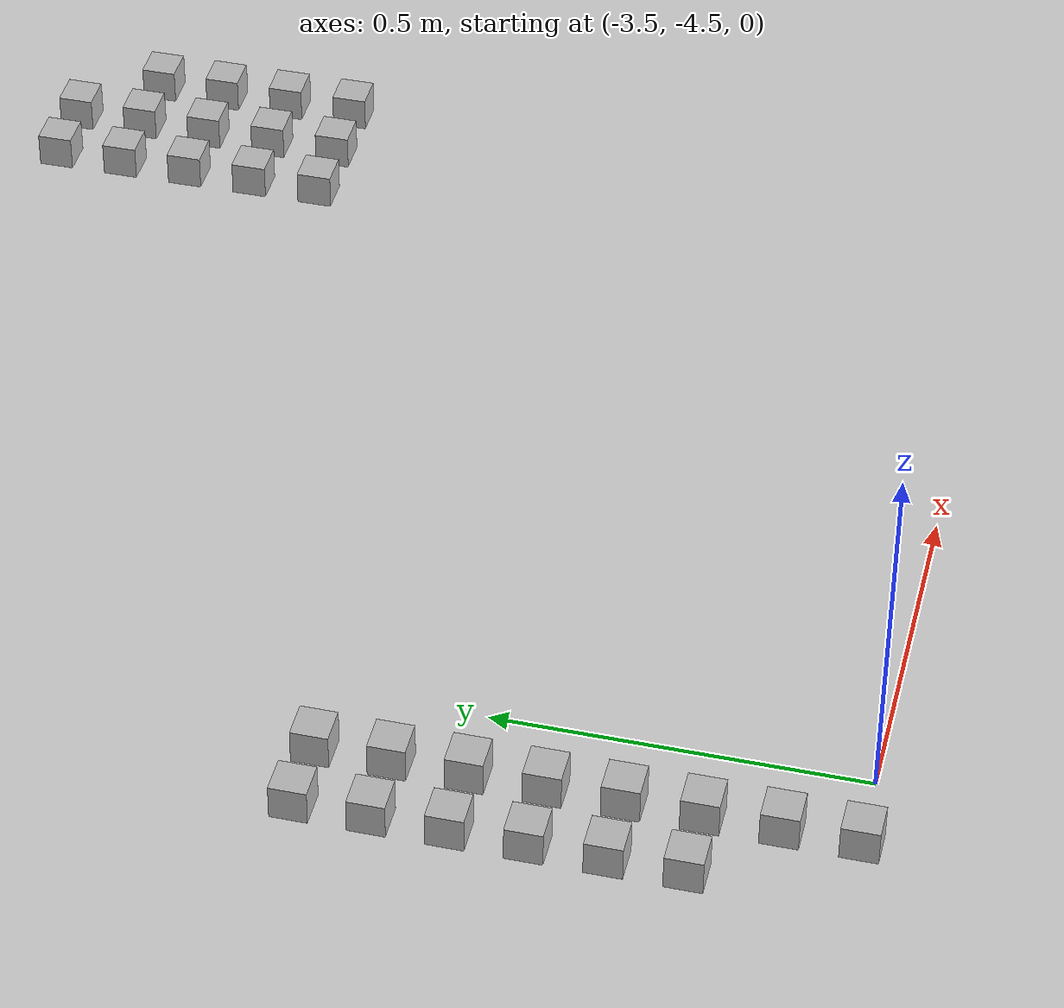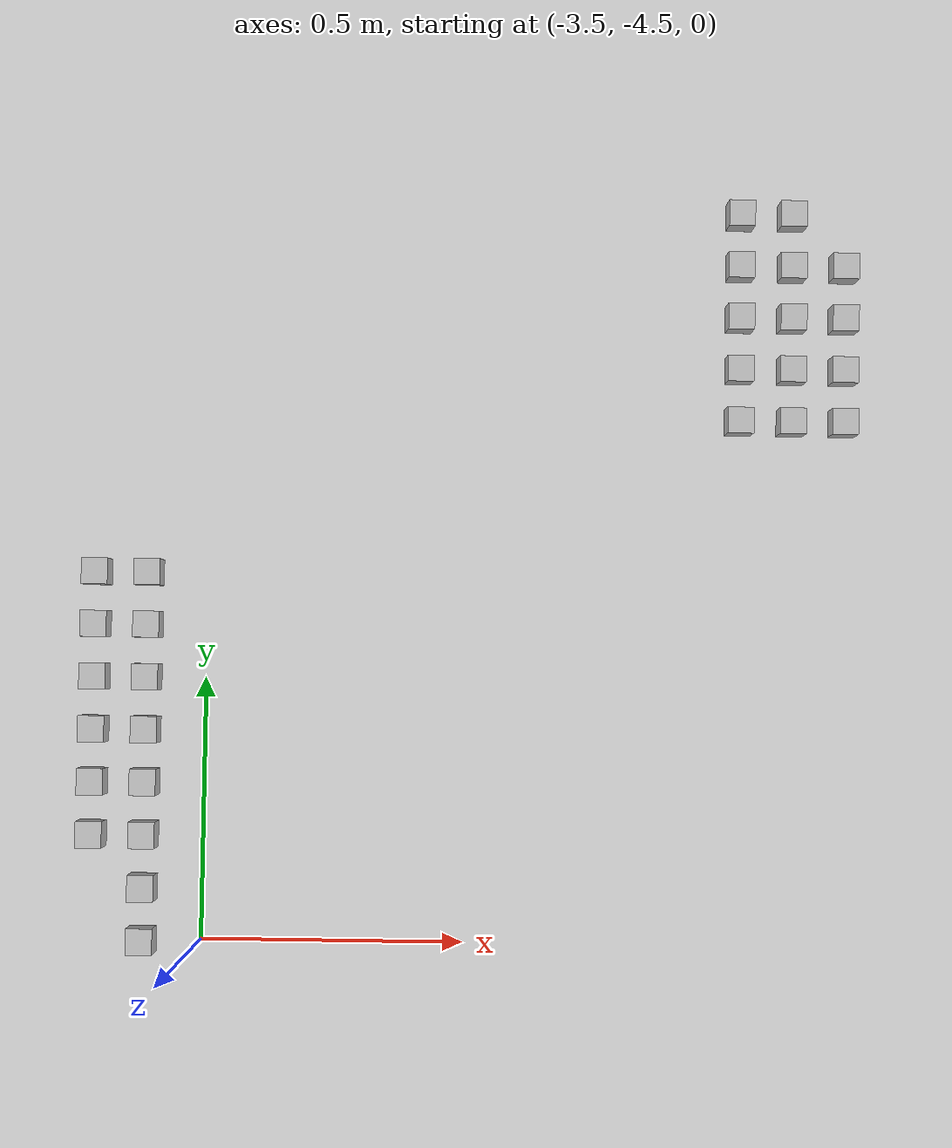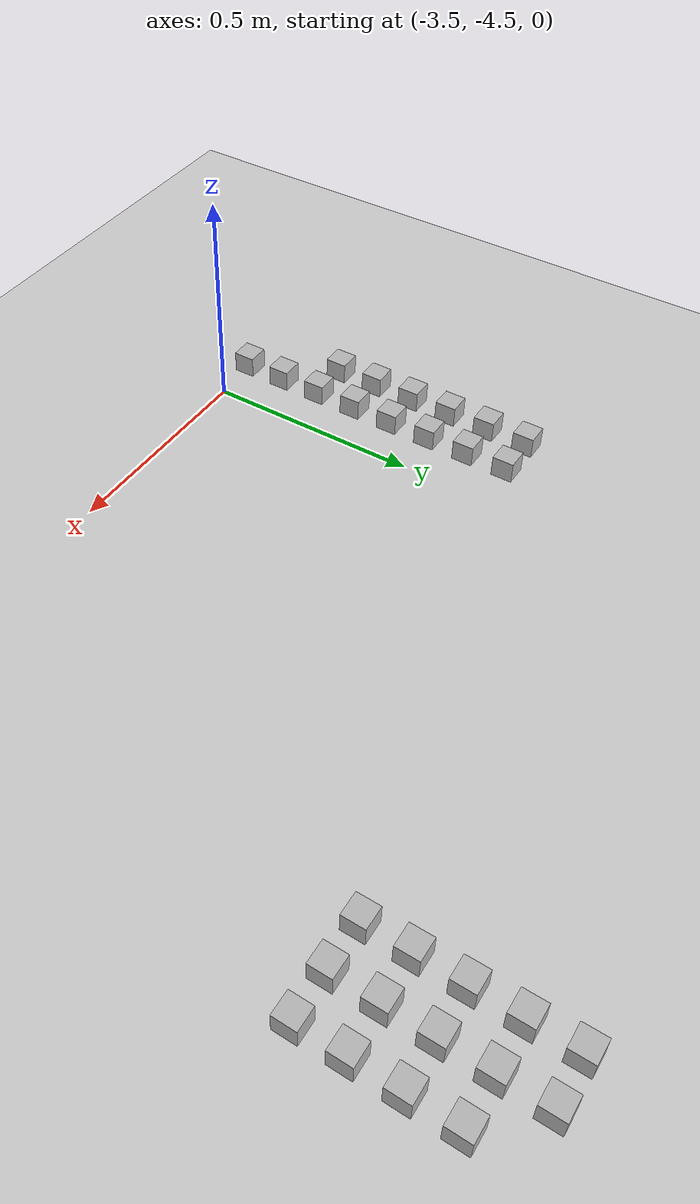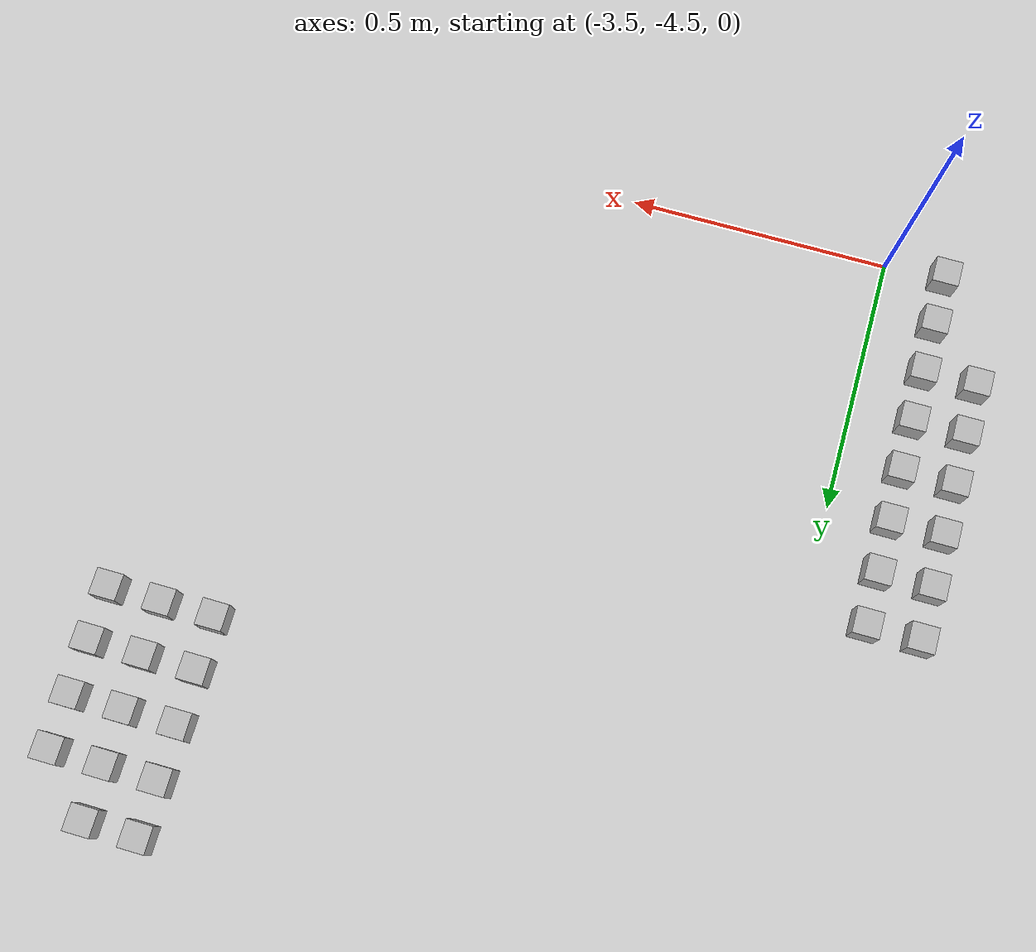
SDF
<sdf version="1.6">
 <world name="default">
  <model name="ground_plane">
   <static>1</static>
   <link name="link">
    <collision name="collision">
     <geometry><plane><normal>0 0 1</normal><size>100 100</size></plane></geometry>
     <surface><friction><ode><mu>100</mu><mu2>50</mu2></ode></friction></surface>
    </collision>
    <visual name="visual">
     <cast_shadows>0</cast_shadows>
     <geometry><plane><normal>0 0 1</normal><size>100 100</size></plane></geometry>
     <material>
      <script><uri>file://media/materials/scripts/gazebo.material</uri><name>Gazebo/Grey</name></script>
     </material>
    </visual>
   </link>
  </model>
  <model name="at71">
   <static>0</static>
   <link name="link">
    <inertial>
     <mass>0.01</mass>
     <inertia><ixx>4e-05</ixx><ixy>0</ixy><ixz>0</ixz><iyy>4e-05</iyy><iyz>0</iyz><izz>4e-05</izz></inertia>
    </inertial>
    <visual name="visual">
     <geometry><box><size>0.05 0.05 0.05</size></box></geometry>
     <material>
      <script>
       <uri>model://at0/materials/scripts</uri>
       <uri>model://at0/materials/textures</uri>
       <name>at0/Diffuse</name>
      </script>
     </material>
    </visual>
    <collision name="collision">
     <geometry><box><size>0.05 0.05 0.05</size></box></geometry>
     <surface><friction><ode><mu>0.8</mu><mu2>0.7</mu2></ode></friction></surface>
    </collision>
   </link>
   <pose>-3.61043 -4.50066 0.025 0 -0 0</pose>
  </model>
  <model name="at79">
   <static>0</static>
   <link name="link">
    <inertial>
     <mass>0.01</mass>
     <inertia><ixx>4e-05</ixx><ixy>0</ixy><ixz>0</ixz><iyy>4e-05</iyy><iyz>0</iyz><izz>4e-05</izz></inertia>
    </inertial>
    <visual name="visual">
     <geometry><box><size>0.05 0.05 0.05</size></box></geometry>
     <material>
      <script>
       <uri>model://at0/materials/scripts</uri>
       <uri>model://at0/materials/textures</uri>
       <name>at0/Diffuse</name>
      </script>
     </material>
    </visual>
    <collision name="collision">
     <geometry><box><size>0.05 0.05 0.05</size></box></geometry>
     <surface><friction><ode><mu>0.8</mu><mu2>0.7</mu2></ode></friction></surface>
    </collision>
   </link>
   <pose>-3.61043 -4.40066 0.025 0 -0 0</pose>
  </model>
  <model name="at86">
   <static>0</static>
   <link name="link">
    <inertial>
     <mass>0.01</mass>
     <inertia><ixx>4e-05</ixx><ixy>0</ixy><ixz>0</ixz><iyy>4e-05</iyy><iyz>0</iyz><izz>4e-05</izz></inertia>
    </inertial>
    <visual name="visual">
     <geometry><box><size>0.05 0.05 0.05</size></box></geometry>
     <material>
      <script>
       <uri>model://at0/materials/scripts</uri>
       <uri>model://at0/materials/textures</uri>
       <name>at0/Diffuse</name>
      </script>
     </material>
    </visual>
    <collision name="collision">
     <geometry><box><size>0.05 0.05 0.05</size></box></geometry>
     <surface><friction><ode><mu>0.8</mu><mu2>0.7</mu2></ode></friction></surface>
    </collision>
   </link>
   <pose>-3.71043 -4.30066 0.025 0 -0 0</pose>
  </model>
  <model name="at87">
   <static>0</static>
   <link name="link">
    <inertial>
     <mass>0.01</mass>
     <inertia><ixx>4e-05</ixx><ixy>0</ixy><ixz>0</ixz><iyy>4e-05</iyy><iyz>0</iyz><izz>4e-05</izz></inertia>
    </inertial>
    <visual name="visual">
     <geometry><box><size>0.05 0.05 0.05</size></box></geometry>
     <material>
      <script>
       <uri>model://at0/materials/scripts</uri>
       <uri>model://at0/materials/textures</uri>
       <name>at0/Diffuse</name>
      </script>
     </material>
    </visual>
    <collision name="collision">
     <geometry><box><size>0.05 0.05 0.05</size></box></geometry>
     <surface><friction><ode><mu>0.8</mu><mu2>0.7</mu2></ode></friction></surface>
    </collision>
   </link>
   <pose>-3.61043 -4.30066 0.025 0 -0 0</pose>
  </model>
  <model name="at94">
   <static>0</static>
   <link name="link">
    <inertial>
     <mass>0.01</mass>
     <inertia><ixx>4e-05</ixx><ixy>0</ixy><ixz>0</ixz><iyy>4e-05</iyy><iyz>0</iyz><izz>4e-05</izz></inertia>
    </inertial>
    <visual name="visual">
     <geometry><box><size>0.05 0.05 0.05</size></box></geometry>
     <material>
      <script>
       <uri>model://at0/materials/scripts</uri>
       <uri>model://at0/materials/textures</uri>
       <name>at0/Diffuse</name>
      </script>
     </material>
    </visual>
    <collision name="collision">
     <geometry><box><size>0.05 0.05 0.05</size></box></geometry>
     <surface><friction><ode><mu>0.8</mu><mu2>0.7</mu2></ode></friction></surface>
    </collision>
   </link>
   <pose>-3.71043 -4.20066 0.025 0 -0 0</pose>
  </model>
  <model name="at95">
   <static>0</static>
   <link name="link">
    <inertial>
     <mass>0.01</mass>
     <inertia><ixx>4e-05</ixx><ixy>0</ixy><ixz>0</ixz><iyy>4e-05</iyy><iyz>0</iyz><izz>4e-05</izz></inertia>
    </inertial>
    <visual name="visual">
     <geometry><box><size>0.05 0.05 0.05</size></box></geometry>
     <material>
      <script>
       <uri>model://at0/materials/scripts</uri>
       <uri>model://at0/materials/textures</uri>
       <name>at0/Diffuse</name>
      </script>
     </material>
    </visual>
    <collision name="collision">
     <geometry><box><size>0.05 0.05 0.05</size></box></geometry>
     <surface><friction><ode><mu>0.8</mu><mu2>0.7</mu2></ode></friction></surface>
    </collision>
   </link>
   <pose>-3.61043 -4.20066 0.025 0 -0 0</pose>
  </model>
  <model name="at102">
   <static>0</static>
   <link name="link">
    <inertial>
     <mass>0.01</mass>
     <inertia><ixx>4e-05</ixx><ixy>0</ixy><ixz>0</ixz><iyy>4e-05</iyy><iyz>0</iyz><izz>4e-05</izz></inertia>
    </inertial>
    <visual name="visual">
     <geometry><box><size>0.05 0.05 0.05</size></box></geometry>
     <material>
      <script>
       <uri>model://at0/materials/scripts</uri>
       <uri>model://at0/materials/textures</uri>
       <name>at0/Diffuse</name>
      </script>
     </material>
    </visual>
    <collision name="collision">
     <geometry><box><size>0.05 0.05 0.05</size></box></geometry>
     <surface><friction><ode><mu>0.8</mu><mu2>0.7</mu2></ode></friction></surface>
    </collision>
   </link>
   <pose>-3.71043 -4.10066 0.025 0 -0 0</pose>
  </model>
  <model name="at103">
   <static>0</static>
   <link name="link">
    <inertial>
     <mass>0.01</mass>
     <inertia><ixx>4e-05</ixx><ixy>0</ixy><ixz>0</ixz><iyy>4e-05</iyy><iyz>0</iyz><izz>4e-05</izz></inertia>
    </inertial>
    <visual name="visual">
     <geometry><box><size>0.05 0.05 0.05</size></box></geometry>
     <material>
      <script>
       <uri>model://at0/materials/scripts</uri>
       <uri>model://at0/materials/textures</uri>
       <name>at0/Diffuse</name>
      </script>
     </material>
    </visual>
    <collision name="collision">
     <geometry><box><size>0.05 0.05 0.05</size></box></geometry>
     <surface><friction><ode><mu>0.8</mu><mu2>0.7</mu2></ode></friction></surface>
    </collision>
   </link>
   <pose>-3.61043 -4.10066 0.025 0 -0 0</pose>
  </model>
  <model name="at110">
   <static>0</static>
   <link name="link">
    <inertial>
     <mass>0.01</mass>
     <inertia><ixx>4e-05</ixx><ixy>0</ixy><ixz>0</ixz><iyy>4e-05</iyy><iyz>0</iyz><izz>4e-05</izz></inertia>
    </inertial>
    <visual name="visual">
     <geometry><box><size>0.05 0.05 0.05</size></box></geometry>
     <material>
      <script>
       <uri>model://at0/materials/scripts</uri>
       <uri>model://at0/materials/textures</uri>
       <name>at0/Diffuse</name>
      </script>
     </material>
    </visual>
    <collision name="collision">
     <geometry><box><size>0.05 0.05 0.05</size></box></geometry>
     <surface><friction><ode><mu>0.8</mu><mu2>0.7</mu2></ode></friction></surface>
    </collision>
   </link>
   <pose>-3.71043 -4.00066 0.025 0 -0 0</pose>
  </model>
  <model name="at111">
   <static>0</static>
   <link name="link">
    <inertial>
     <mass>0.01</mass>
     <inertia><ixx>4e-05</ixx><ixy>0</ixy><ixz>0</ixz><iyy>4e-05</iyy><iyz>0</iyz><izz>4e-05</izz></inertia>
    </inertial>
    <visual name="visual">
     <geometry><box><size>0.05 0.05 0.05</size></box></geometry>
     <material>
      <script>
       <uri>model://at0/materials/scripts</uri>
       <uri>model://at0/materials/textures</uri>
       <name>at0/Diffuse</name>
      </script>
     </material>
    </visual>
    <collision name="collision">
     <geometry><box><size>0.05 0.05 0.05</size></box></geometry>
     <surface><friction><ode><mu>0.8</mu><mu2>0.7</mu2></ode></friction></surface>
    </collision>
   </link>
   <pose>-3.61043 -4.00066 0.025 0 -0 0</pose>
  </model>
  <model name="at118">
   <static>0</static>
   <link name="link">
    <inertial>
     <mass>0.01</mass>
     <inertia><ixx>4e-05</ixx><ixy>0</ixy><ixz>0</ixz><iyy>4e-05</iyy><iyz>0</iyz><izz>4e-05</izz></inertia>
    </inertial>
    <visual name="visual">
     <geometry><box><size>0.05 0.05 0.05</size></box></geometry>
     <material>
      <script>
       <uri>model://at0/materials/scripts</uri>
       <uri>model://at0/materials/textures</uri>
       <name>at0/Diffuse</name>
      </script>
     </material>
    </visual>
    <collision name="collision">
     <geometry><box><size>0.05 0.05 0.05</size></box></geometry>
     <surface><friction><ode><mu>0.8</mu><mu2>0.7</mu2></ode></friction></surface>
    </collision>
   </link>
   <pose>-3.71043 -3.90066 0.025 0 -0 0</pose>
  </model>
  <model name="at119">
   <static>0</static>
   <link name="link">
    <inertial>
     <mass>0.01</mass>
     <inertia><ixx>4e-05</ixx><ixy>0</ixy><ixz>0</ixz><iyy>4e-05</iyy><iyz>0</iyz><izz>4e-05</izz></inertia>
    </inertial>
    <visual name="visual">
     <geometry><box><size>0.05 0.05 0.05</size></box></geometry>
     <material>
      <script>
       <uri>model://at0/materials/scripts</uri>
       <uri>model://at0/materials/textures</uri>
       <name>at0/Diffuse</name>
      </script>
     </material>
    </visual>
    <collision name="collision">
     <geometry><box><size>0.05 0.05 0.05</size></box></geometry>
     <surface><friction><ode><mu>0.8</mu><mu2>0.7</mu2></ode></friction></surface>
    </collision>
   </link>
   <pose>-3.61043 -3.90066 0.025 0 -0 0</pose>
  </model>
  <model name="at126">
   <static>0</static>
   <link name="link">
    <inertial>
     <mass>0.01</mass>
     <inertia><ixx>4e-05</ixx><ixy>0</ixy><ixz>0</ixz><iyy>4e-05</iyy><iyz>0</iyz><izz>4e-05</izz></inertia>
    </inertial>
    <visual name="visual">
     <geometry><box><size>0.05 0.05 0.05</size></box></geometry>
     <material>
      <script>
       <uri>model://at0/materials/scripts</uri>
       <uri>model://at0/materials/textures</uri>
       <name>at0/Diffuse</name>
      </script>
     </material>
    </visual>
    <collision name="collision">
     <geometry><box><size>0.05 0.05 0.05</size></box></geometry>
     <surface><friction><ode><mu>0.8</mu><mu2>0.7</mu2></ode></friction></surface>
    </collision>
   </link>
   <pose>-3.71043 -3.80066 0.025 0 -0 0</pose>
  </model>
  <model name="at127">
   <static>0</static>
   <link name="link">
    <inertial>
     <mass>0.01</mass>
     <inertia><ixx>4e-05</ixx><ixy>0</ixy><ixz>0</ixz><iyy>4e-05</iyy><iyz>0</iyz><izz>4e-05</izz></inertia>
    </inertial>
    <visual name="visual">
     <geometry><box><size>0.05 0.05 0.05</size></box></geometry>
     <material>
      <script>
       <uri>model://at0/materials/scripts</uri>
       <uri>model://at0/materials/textures</uri>
       <name>at0/Diffuse</name>
      </script>
     </material>
    </visual>
    <collision name="collision">
     <geometry><box><size>0.05 0.05 0.05</size></box></geometry>
     <surface><friction><ode><mu>0.8</mu><mu2>0.7</mu2></ode></friction></surface>
    </collision>
   </link>
   <pose>-3.61043 -3.80066 0.025 0 -0 0</pose>
  </model>
  <model name="at448">
   <static>0</static>
   <link name="link">
    <inertial>
     <mass>0.01</mass>
     <inertia><ixx>4e-05</ixx><ixy>0</ixy><ixz>0</ixz><iyy>4e-05</iyy><iyz>0</iyz><izz>4e-05</izz></inertia>
    </inertial>
    <visual name="visual">
     <geometry><box><size>0.05 0.05 0.05</size></box></geometry>
     <material>
      <script>
       <uri>model://at0/materials/scripts</uri>
       <uri>model://at0/materials/textures</uri>
       <name>at0/Diffuse</name>
      </script>
     </material>
    </visual>
    <collision name="collision">
     <geometry><box><size>0.05 0.05 0.05</size></box></geometry>
     <surface><friction><ode><mu>0.8</mu><mu2>0.7</mu2></ode></friction></surface>
    </collision>
   </link>
   <pose>-2.48283 -3.49448 0.025 0 -0 0</pose>
  </model>
  <model name="at449">
   <static>0</static>
   <link name="link">
    <inertial>
     <mass>0.01</mass>
     <inertia><ixx>4e-05</ixx><ixy>0</ixy><ixz>0</ixz><iyy>4e-05</iyy><iyz>0</iyz><izz>4e-05</izz></inertia>
    </inertial>
    <visual name="visual">
     <geometry><box><size>0.05 0.05 0.05</size></box></geometry>
     <material>
      <script>
       <uri>model://at0/materials/scripts</uri>
       <uri>model://at0/materials/textures</uri>
       <name>at0/Diffuse</name>
      </script>
     </material>
    </visual>
    <collision name="collision">
     <geometry><box><size>0.05 0.05 0.05</size></box></geometry>
     <surface><friction><ode><mu>0.8</mu><mu2>0.7</mu2></ode></friction></surface>
    </collision>
   </link>
   <pose>-2.38283 -3.49448 0.025 0 -0 0</pose>
  </model>
  <model name="at450">
   <static>0</static>
   <link name="link">
    <inertial>
     <mass>0.01</mass>
     <inertia><ixx>4e-05</ixx><ixy>0</ixy><ixz>0</ixz><iyy>4e-05</iyy><iyz>0</iyz><izz>4e-05</izz></inertia>
    </inertial>
    <visual name="visual">
     <geometry><box><size>0.05 0.05 0.05</size></box></geometry>
     <material>
      <script>
       <uri>model://at0/materials/scripts</uri>
       <uri>model://at0/materials/textures</uri>
       <name>at0/Diffuse</name>
      </script>
     </material>
    </visual>
    <collision name="collision">
     <geometry><box><size>0.05 0.05 0.05</size></box></geometry>
     <surface><friction><ode><mu>0.8</mu><mu2>0.7</mu2></ode></friction></surface>
    </collision>
   </link>
   <pose>-2.28283 -3.49448 0.025 0 -0 0</pose>
  </model>
  <model name="at456">
   <static>0</static>
   <link name="link">
    <inertial>
     <mass>0.01</mass>
     <inertia><ixx>4e-05</ixx><ixy>0</ixy><ixz>0</ixz><iyy>4e-05</iyy><iyz>0</iyz><izz>4e-05</izz></inertia>
    </inertial>
    <visual name="visual">
     <geometry><box><size>0.05 0.05 0.05</size></box></geometry>
     <material>
      <script>
       <uri>model://at0/materials/scripts</uri>
       <uri>model://at0/materials/textures</uri>
       <name>at0/Diffuse</name>
      </script>
     </material>
    </visual>
    <collision name="collision">
     <geometry><box><size>0.05 0.05 0.05</size></box></geometry>
     <surface><friction><ode><mu>0.8</mu><mu2>0.7</mu2></ode></friction></surface>
    </collision>
   </link>
   <pose>-2.48283 -3.39448 0.025 0 -0 0</pose>
  </model>
  <model name="at457">
   <static>0</static>
   <link name="link">
    <inertial>
     <mass>0.01</mass>
     <inertia><ixx>4e-05</ixx><ixy>0</ixy><ixz>0</ixz><iyy>4e-05</iyy><iyz>0</iyz><izz>4e-05</izz></inertia>
    </inertial>
    <visual name="visual">
     <geometry><box><size>0.05 0.05 0.05</size></box></geometry>
     <material>
      <script>
       <uri>model://at0/materials/scripts</uri>
       <uri>model://at0/materials/textures</uri>
       <name>at0/Diffuse</name>
      </script>
     </material>
    </visual>
    <collision name="collision">
     <geometry><box><size>0.05 0.05 0.05</size></box></geometry>
     <surface><friction><ode><mu>0.8</mu><mu2>0.7</mu2></ode></friction></surface>
    </collision>
   </link>
   <pose>-2.38283 -3.39448 0.025 0 -0 0</pose>
  </model>
  <model name="at458">
   <static>0</static>
   <link name="link">
    <inertial>
     <mass>0.01</mass>
     <inertia><ixx>4e-05</ixx><ixy>0</ixy><ixz>0</ixz><iyy>4e-05</iyy><iyz>0</iyz><izz>4e-05</izz></inertia>
    </inertial>
    <visual name="visual">
     <geometry><box><size>0.05 0.05 0.05</size></box></geometry>
     <material>
      <script>
       <uri>model://at0/materials/scripts</uri>
       <uri>model://at0/materials/textures</uri>
       <name>at0/Diffuse</name>
      </script>
     </material>
    </visual>
    <collision name="collision">
     <geometry><box><size>0.05 0.05 0.05</size></box></geometry>
     <surface><friction><ode><mu>0.8</mu><mu2>0.7</mu2></ode></friction></surface>
    </collision>
   </link>
   <pose>-2.28283 -3.39448 0.025 0 -0 0</pose>
  </model>
  <model name="at464">
   <static>0</static>
   <link name="link">
    <inertial>
     <mass>0.01</mass>
     <inertia><ixx>4e-05</ixx><ixy>0</ixy><ixz>0</ixz><iyy>4e-05</iyy><iyz>0</iyz><izz>4e-05</izz></inertia>
    </inertial>
    <visual name="visual">
     <geometry><box><size>0.05 0.05 0.05</size></box></geometry>
     <material>
      <script>
       <uri>model://at0/materials/scripts</uri>
       <uri>model://at0/materials/textures</uri>
       <name>at0/Diffuse</name>
      </script>
     </material>
    </visual>
    <collision name="collision">
     <geometry><box><size>0.05 0.05 0.05</size></box></geometry>
     <surface><friction><ode><mu>0.8</mu><mu2>0.7</mu2></ode></friction></surface>
    </collision>
   </link>
   <pose>-2.48283 -3.29448 0.025 0 -0 0</pose>
  </model>
  <model name="at465">
   <static>0</static>
   <link name="link">
    <inertial>
     <mass>0.01</mass>
     <inertia><ixx>4e-05</ixx><ixy>0</ixy><ixz>0</ixz><iyy>4e-05</iyy><iyz>0</iyz><izz>4e-05</izz></inertia>
    </inertial>
    <visual name="visual">
     <geometry><box><size>0.05 0.05 0.05</size></box></geometry>
     <material>
      <script>
       <uri>model://at0/materials/scripts</uri>
       <uri>model://at0/materials/textures</uri>
       <name>at0/Diffuse</name>
      </script>
     </material>
    </visual>
    <collision name="collision">
     <geometry><box><size>0.05 0.05 0.05</size></box></geometry>
     <surface><friction><ode><mu>0.8</mu><mu2>0.7</mu2></ode></friction></surface>
    </collision>
   </link>
   <pose>-2.38283 -3.29448 0.025 0 -0 0</pose>
  </model>
  <model name="at466">
   <static>0</static>
   <link name="link">
    <inertial>
     <mass>0.01</mass>
     <inertia><ixx>4e-05</ixx><ixy>0</ixy><ixz>0</ixz><iyy>4e-05</iyy><iyz>0</iyz><izz>4e-05</izz></inertia>
    </inertial>
    <visual name="visual">
     <geometry><box><size>0.05 0.05 0.05</size></box></geometry>
     <material>
      <script>
       <uri>model://at0/materials/scripts</uri>
       <uri>model://at0/materials/textures</uri>
       <name>at0/Diffuse</name>
      </script>
     </material>
    </visual>
    <collision name="collision">
     <geometry><box><size>0.05 0.05 0.05</size></box></geometry>
     <surface><friction><ode><mu>0.8</mu><mu2>0.7</mu2></ode></friction></surface>
    </collision>
   </link>
   <pose>-2.28283 -3.29448 0.025 0 -0 0</pose>
  </model>
  <model name="at472">
   <static>0</static>
   <link name="link">
    <inertial>
     <mass>0.01</mass>
     <inertia><ixx>4e-05</ixx><ixy>0</ixy><ixz>0</ixz><iyy>4e-05</iyy><iyz>0</iyz><izz>4e-05</izz></inertia>
    </inertial>
    <visual name="visual">
     <geometry><box><size>0.05 0.05 0.05</size></box></geometry>
     <material>
      <script>
       <uri>model://at0/materials/scripts</uri>
       <uri>model://at0/materials/textures</uri>
       <name>at0/Diffuse</name>
      </script>
     </material>
    </visual>
    <collision name="collision">
     <geometry><box><size>0.05 0.05 0.05</size></box></geometry>
     <surface><friction><ode><mu>0.8</mu><mu2>0.7</mu2></ode></friction></surface>
    </collision>
   </link>
   <pose>-2.48283 -3.19448 0.025 0 -0 0</pose>
  </model>
  <model name="at473">
   <static>0</static>
   <link name="link">
    <inertial>
     <mass>0.01</mass>
     <inertia><ixx>4e-05</ixx><ixy>0</ixy><ixz>0</ixz><iyy>4e-05</iyy><iyz>0</iyz><izz>4e-05</izz></inertia>
    </inertial>
    <visual name="visual">
     <geometry><box><size>0.05 0.05 0.05</size></box></geometry>
     <material>
      <script>
       <uri>model://at0/materials/scripts</uri>
       <uri>model://at0/materials/textures</uri>
       <name>at0/Diffuse</name>
      </script>
     </material>
    </visual>
    <collision name="collision">
     <geometry><box><size>0.05 0.05 0.05</size></box></geometry>
     <surface><friction><ode><mu>0.8</mu><mu2>0.7</mu2></ode></friction></surface>
    </collision>
   </link>
   <pose>-2.38283 -3.19448 0.025 0 -0 0</pose>
  </model>
  <model name="at474">
   <static>0</static>
   <link name="link">
    <inertial>
     <mass>0.01</mass>
     <inertia><ixx>4e-05</ixx><ixy>0</ixy><ixz>0</ixz><iyy>4e-05</iyy><iyz>0</iyz><izz>4e-05</izz></inertia>
    </inertial>
    <visual name="visual">
     <geometry><box><size>0.05 0.05 0.05</size></box></geometry>
     <material>
      <script>
       <uri>model://at0/materials/scripts</uri>
       <uri>model://at0/materials/textures</uri>
       <name>at0/Diffuse</name>
      </script>
     </material>
    </visual>
    <collision name="collision">
     <geometry><box><size>0.05 0.05 0.05</size></box></geometry>
     <surface><friction><ode><mu>0.8</mu><mu2>0.7</mu2></ode></friction></surface>
    </collision>
   </link>
   <pose>-2.28283 -3.19448 0.025 0 -0 0</pose>
  </model>
  <model name="at480">
   <static>0</static>
   <link name="link">
    <inertial>
     <mass>0.01</mass>
     <inertia><ixx>4e-05</ixx><ixy>0</ixy><ixz>0</ixz><iyy>4e-05</iyy><iyz>0</iyz><izz>4e-05</izz></inertia>
    </inertial>
    <visual name="visual">
     <geometry><box><size>0.05 0.05 0.05</size></box></geometry>
     <material>
      <script>
       <uri>model://at0/materials/scripts</uri>
       <uri>model://at0/materials/textures</uri>
       <name>at0/Diffuse</name>
      </script>
     </material>
    </visual>
    <collision name="collision">
     <geometry><box><size>0.05 0.05 0.05</size></box></geometry>
     <surface><friction><ode><mu>0.8</mu><mu2>0.7</mu2></ode></friction></surface>
    </collision>
   </link>
   <pose>-2.48283 -3.09448 0.025 0 -0 0</pose>
  </model>
  <model name="at481">
   <static>0</static>
   <link name="link">
    <inertial>
     <mass>0.01</mass>
     <inertia><ixx>4e-05</ixx><ixy>0</ixy><ixz>0</ixz><iyy>4e-05</iyy><iyz>0</iyz><izz>4e-05</izz></inertia>
    </inertial>
    <visual name="visual">
     <geometry><box><size>0.05 0.05 0.05</size></box></geometry>
     <material>
      <script>
       <uri>model://at0/materials/scripts</uri>
       <uri>model://at0/materials/textures</uri>
       <name>at0/Diffuse</name>
      </script>
     </material>
    </visual>
    <collision name="collision">
     <geometry><box><size>0.05 0.05 0.05</size></box></geometry>
     <surface><friction><ode><mu>0.8</mu><mu2>0.7</mu2></ode></friction></surface>
    </collision>
   </link>
   <pose>-2.38283 -3.09448 0.025 0 -0 0</pose>
  </model>
 </world>
</sdf>
